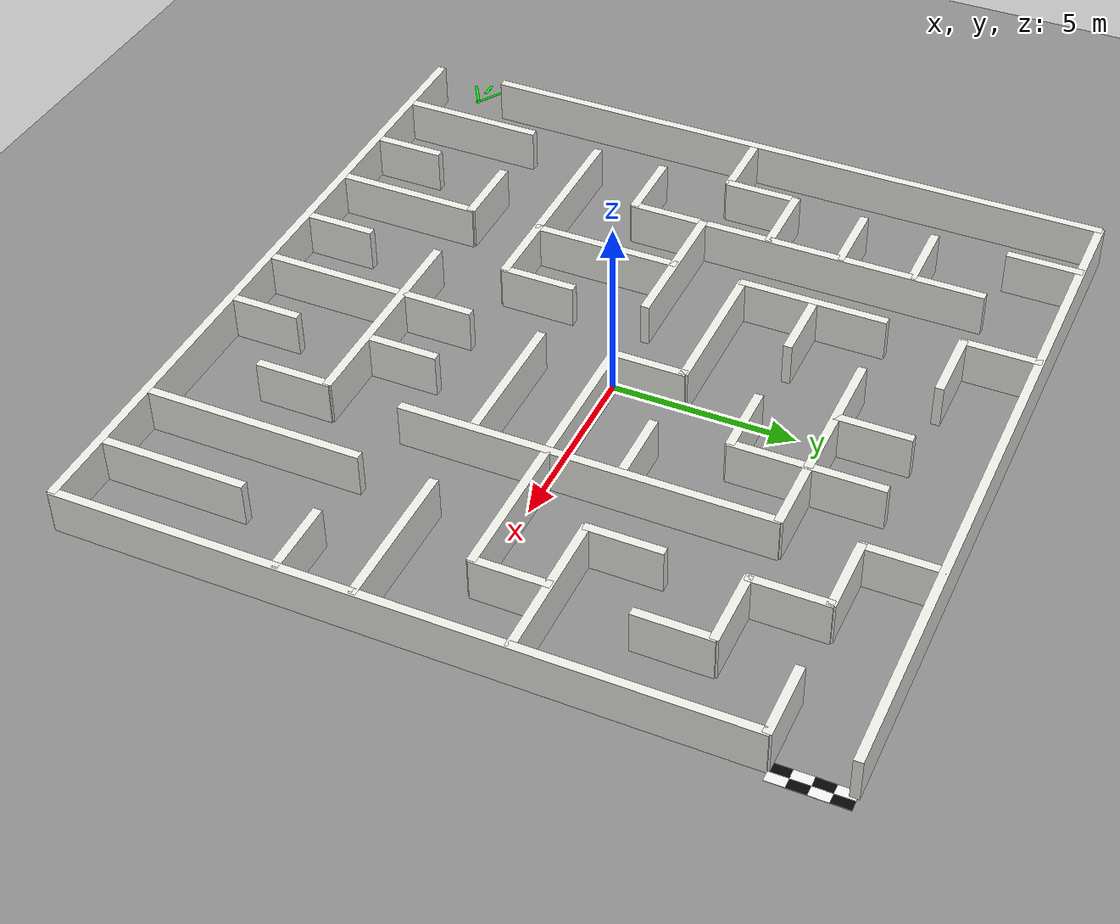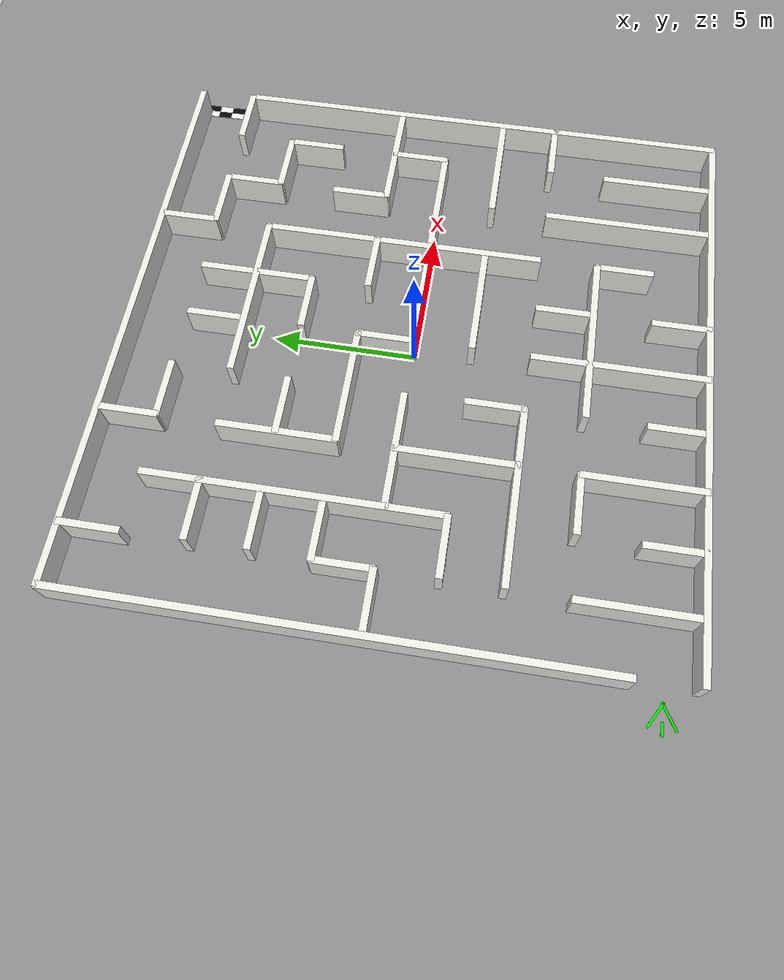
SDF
<sdf version="1.10">
 <world name="tugbot_maze_world_20260528_clean_scaled2x">
  <plugin name="gz::sim::systems::Physics" filename="gz-sim-physics-system"/>
  <plugin name="gz::sim::systems::UserCommands" filename="gz-sim-user-commands-system"/>
  <plugin name="gz::sim::systems::SceneBroadcaster" filename="gz-sim-scene-broadcaster-system"/>
  <plugin name="gz::sim::systems::Sensors" filename="gz-sim-sensors-system">
   <render_engine>ogre2</render_engine>
  </plugin>
  <plugin name="gz::sim::systems::Imu" filename="gz-sim-imu-system"/>
  <scene>
   <shadows>true</shadows>
   <ambient>0.55 0.55 0.55 1</ambient>
   <background>0.70 0.72 0.74 1</background>
  </scene>
  <physics name="1ms" type="ode">
   <max_step_size>0.001</max_step_size>
   <real_time_factor>1</real_time_factor>
   <real_time_update_rate>1000</real_time_update_rate>
  </physics>
  <gravity>0 0 -9.8</gravity>
  <atmosphere type="adiabatic"/>
  <model name="ground_plane">
   <static>true</static>
   <link name="link">
    <collision name="collision">
     <geometry><plane><normal>0 0 1</normal><size>1 1</size></plane></geometry>
    </collision>
    <visual name="visual">
     <geometry><plane><normal>0 0 1</normal><size>20 20</size></plane></geometry>
     <material><ambient>0.55 0.55 0.55 1</ambient><diffuse>0.55 0.55 0.55 1</diffuse></material>
    </visual>
   </link>
  </model>
  <model name="maze_exit_marker" phase33d_style="hidden_semantic_marker">
   <static>true</static>
   <pose>10.061 9.058 0.010 0.000 0.000 0.000</pose>
   <link name="link">
    <visual name="hidden_semantic_marker">
     <geometry><box><size>0.001 0.001 0.001</size></box></geometry>
     <material>
      <ambient>0.0 0.0 0.0 0.0</ambient>
      <diffuse>0.0 0.0 0.0 0.0</diffuse>
      <transparency>1.000</transparency>
     </material>
    </visual>
   </link>
  </model>
  <model name="maze_wall_outer_001_outer_001">
   <static>true</static>
   <pose>-0.034 9.994 0.600 0.000 0.000 0.000</pose>
   <link name="link">
    <collision name="collision"><geometry><box><size>20.056 0.240 1.200</size></box></geometry></collision>
    <visual name="visual">
     <geometry><box><size>20.056 0.240 1.200</size></box></geometry>
     <material>
      <ambient>0.92 0.92 0.90 1</ambient>
      <diffuse>0.92 0.92 0.90 1</diffuse>
      <specular>0.2 0.2 0.2 1</specular>
     </material>
    </visual>
   </link>
  </model>
  <model name="maze_wall_seg_002_h_001">
   <static>true</static>
   <pose>-3.008 7.988 0.600 0.000 0.000 0.000</pose>
   <link name="link">
    <collision name="collision"><geometry><box><size>2.072 0.240 1.200</size></box></geometry></collision>
    <visual name="visual">
     <geometry><box><size>2.072 0.240 1.200</size></box></geometry>
     <material>
      <ambient>0.92 0.92 0.90 1</ambient>
      <diffuse>0.92 0.92 0.90 1</diffuse>
      <specular>0.2 0.2 0.2 1</specular>
     </material>
    </visual>
   </link>
  </model>
  <model name="maze_wall_seg_003_h_002">
   <static>true</static>
   <pose>4.980 7.988 0.600 0.000 0.000 0.000</pose>
   <link name="link">
    <collision name="collision"><geometry><box><size>2.140 0.240 1.200</size></box></geometry></collision>
    <visual name="visual">
     <geometry><box><size>2.140 0.240 1.200</size></box></geometry>
     <material>
      <ambient>0.92 0.92 0.90 1</ambient>
      <diffuse>0.92 0.92 0.90 1</diffuse>
      <specular>0.2 0.2 0.2 1</specular>
     </material>
    </visual>
   </link>
  </model>
  <model name="maze_wall_seg_004_h_003">
   <static>true</static>
   <pose>9.026 7.988 0.600 0.000 0.000 0.000</pose>
   <link name="link">
    <collision name="collision"><geometry><box><size>2.072 0.240 1.200</size></box></geometry></collision>
    <visual name="visual">
     <geometry><box><size>2.072 0.240 1.200</size></box></geometry>
     <material>
      <ambient>0.92 0.92 0.90 1</ambient>
      <diffuse>0.92 0.92 0.90 1</diffuse>
      <specular>0.2 0.2 0.2 1</specular>
     </material>
    </visual>
   </link>
  </model>
  <model name="maze_wall_seg_005_h_004">
   <static>true</static>
   <pose>-6.952 5.984 0.600 0.000 0.000 0.000</pose>
   <link name="link">
    <collision name="collision"><geometry><box><size>2.072 0.240 1.200</size></box></geometry></collision>
    <visual name="visual">
     <geometry><box><size>2.072 0.240 1.200</size></box></geometry>
     <material>
      <ambient>0.92 0.92 0.90 1</ambient>
      <diffuse>0.92 0.92 0.90 1</diffuse>
      <specular>0.2 0.2 0.2 1</specular>
     </material>
    </visual>
   </link>
  </model>
  <model name="maze_wall_seg_006_h_005">
   <static>true</static>
   <pose>1.036 5.984 0.600 0.000 0.000 0.000</pose>
   <link name="link">
    <collision name="collision"><geometry><box><size>6.016 0.240 1.200</size></box></geometry></collision>
    <visual name="visual">
     <geometry><box><size>6.016 0.240 1.200</size></box></geometry>
     <material>
      <ambient>0.92 0.92 0.90 1</ambient>
      <diffuse>0.92 0.92 0.90 1</diffuse>
      <specular>0.2 0.2 0.2 1</specular>
     </material>
    </visual>
   </link>
  </model>
  <model name="maze_wall_seg_007_h_006">
   <static>true</static>
   <pose>6.986 5.984 0.600 0.000 0.000 0.000</pose>
   <link name="link">
    <collision name="collision"><geometry><box><size>2.140 0.240 1.200</size></box></geometry></collision>
    <visual name="visual">
     <geometry><box><size>2.140 0.240 1.200</size></box></geometry>
     <material>
      <ambient>0.92 0.92 0.90 1</ambient>
      <diffuse>0.92 0.92 0.90 1</diffuse>
      <specular>0.2 0.2 0.2 1</specular>
     </material>
    </visual>
   </link>
  </model>
  <model name="maze_wall_seg_008_h_007">
   <static>true</static>
   <pose>-6.952 3.978 0.600 0.000 0.000 0.000</pose>
   <link name="link">
    <collision name="collision"><geometry><box><size>2.072 0.240 1.200</size></box></geometry></collision>
    <visual name="visual">
     <geometry><box><size>2.072 0.240 1.200</size></box></geometry>
     <material>
      <ambient>0.92 0.92 0.90 1</ambient>
      <diffuse>0.92 0.92 0.90 1</diffuse>
      <specular>0.2 0.2 0.2 1</specular>
     </material>
    </visual>
   </link>
  </model>
  <model name="maze_wall_seg_009_h_008">
   <static>true</static>
   <pose>-3.008 3.978 0.600 0.000 0.000 0.000</pose>
   <link name="link">
    <collision name="collision"><geometry><box><size>2.072 0.240 1.200</size></box></geometry></collision>
    <visual name="visual">
     <geometry><box><size>2.072 0.240 1.200</size></box></geometry>
     <material>
      <ambient>0.92 0.92 0.90 1</ambient>
      <diffuse>0.92 0.92 0.90 1</diffuse>
      <specular>0.2 0.2 0.2 1</specular>
     </material>
    </visual>
   </link>
  </model>
  <model name="maze_wall_seg_010_h_009">
   <static>true</static>
   <pose>1.036 3.978 0.600 0.000 0.000 0.000</pose>
   <link name="link">
    <collision name="collision"><geometry><box><size>2.006 0.240 1.200</size></box></geometry></collision>
    <visual name="visual">
     <geometry><box><size>2.006 0.240 1.200</size></box></geometry>
     <material>
      <ambient>0.92 0.92 0.90 1</ambient>
      <diffuse>0.92 0.92 0.90 1</diffuse>
      <specular>0.2 0.2 0.2 1</specular>
     </material>
    </visual>
   </link>
  </model>
  <model name="maze_wall_seg_011_h_010">
   <static>true</static>
   <pose>-6.986 1.972 0.600 0.000 0.000 0.000</pose>
   <link name="link">
    <collision name="collision"><geometry><box><size>2.140 0.240 1.200</size></box></geometry></collision>
    <visual name="visual">
     <geometry><box><size>2.140 0.240 1.200</size></box></geometry>
     <material>
      <ambient>0.92 0.92 0.90 1</ambient>
      <diffuse>0.92 0.92 0.90 1</diffuse>
      <specular>0.2 0.2 0.2 1</specular>
     </material>
    </visual>
   </link>
  </model>
  <model name="maze_wall_seg_012_h_011">
   <static>true</static>
   <pose>-1.972 1.972 0.600 0.000 0.000 0.000</pose>
   <link name="link">
    <collision name="collision"><geometry><box><size>4.144 0.240 1.200</size></box></geometry></collision>
    <visual name="visual">
     <geometry><box><size>4.144 0.240 1.200</size></box></geometry>
     <material>
      <ambient>0.92 0.92 0.90 1</ambient>
      <diffuse>0.92 0.92 0.90 1</diffuse>
      <specular>0.2 0.2 0.2 1</specular>
     </material>
    </visual>
   </link>
  </model>
  <model name="maze_wall_seg_013_h_012">
   <static>true</static>
   <pose>3.008 1.972 0.600 0.000 0.000 0.000</pose>
   <link name="link">
    <collision name="collision"><geometry><box><size>2.072 0.240 1.200</size></box></geometry></collision>
    <visual name="visual">
     <geometry><box><size>2.072 0.240 1.200</size></box></geometry>
     <material>
      <ambient>0.92 0.92 0.90 1</ambient>
      <diffuse>0.92 0.92 0.90 1</diffuse>
      <specular>0.2 0.2 0.2 1</specular>
     </material>
    </visual>
   </link>
  </model>
  <model name="maze_wall_seg_014_h_013">
   <static>true</static>
   <pose>7.988 1.972 0.600 0.000 0.000 0.000</pose>
   <link name="link">
    <collision name="collision"><geometry><box><size>4.144 0.240 1.200</size></box></geometry></collision>
    <visual name="visual">
     <geometry><box><size>4.144 0.240 1.200</size></box></geometry>
     <material>
      <ambient>0.92 0.92 0.90 1</ambient>
      <diffuse>0.92 0.92 0.90 1</diffuse>
      <specular>0.2 0.2 0.2 1</specular>
     </material>
    </visual>
   </link>
  </model>
  <model name="maze_wall_seg_015_h_014">
   <static>true</static>
   <pose>-8.992 0.034 0.600 0.000 0.000 0.000</pose>
   <link name="link">
    <collision name="collision"><geometry><box><size>2.140 0.240 1.200</size></box></geometry></collision>
    <visual name="visual">
     <geometry><box><size>2.140 0.240 1.200</size></box></geometry>
     <material>
      <ambient>0.92 0.92 0.90 1</ambient>
      <diffuse>0.92 0.92 0.90 1</diffuse>
      <specular>0.2 0.2 0.2 1</specular>
     </material>
    </visual>
   </link>
  </model>
  <model name="maze_wall_seg_016_h_015">
   <static>true</static>
   <pose>-4.012 0.034 0.600 0.000 0.000 0.000</pose>
   <link name="link">
    <collision name="collision"><geometry><box><size>4.078 0.240 1.200</size></box></geometry></collision>
    <visual name="visual">
     <geometry><box><size>4.078 0.240 1.200</size></box></geometry>
     <material>
      <ambient>0.92 0.92 0.90 1</ambient>
      <diffuse>0.92 0.92 0.90 1</diffuse>
      <specular>0.2 0.2 0.2 1</specular>
     </material>
    </visual>
   </link>
  </model>
  <model name="maze_wall_seg_017_h_016">
   <static>true</static>
   <pose>4.012 0.034 0.600 0.000 0.000 0.000</pose>
   <link name="link">
    <collision name="collision"><geometry><box><size>8.090 0.240 1.200</size></box></geometry></collision>
    <visual name="visual">
     <geometry><box><size>8.090 0.240 1.200</size></box></geometry>
     <material>
      <ambient>0.92 0.92 0.90 1</ambient>
      <diffuse>0.92 0.92 0.90 1</diffuse>
      <specular>0.2 0.2 0.2 1</specular>
     </material>
    </visual>
   </link>
  </model>
  <model name="maze_wall_seg_018_h_017">
   <static>true</static>
   <pose>-6.952 -1.972 0.600 0.000 0.000 0.000</pose>
   <link name="link">
    <collision name="collision"><geometry><box><size>2.072 0.240 1.200</size></box></geometry></collision>
    <visual name="visual">
     <geometry><box><size>2.072 0.240 1.200</size></box></geometry>
     <material>
      <ambient>0.92 0.92 0.90 1</ambient>
      <diffuse>0.92 0.92 0.90 1</diffuse>
      <specular>0.2 0.2 0.2 1</specular>
     </material>
    </visual>
   </link>
  </model>
  <model name="maze_wall_seg_019_h_018">
   <static>true</static>
   <pose>2.038 -1.972 0.600 0.000 0.000 0.000</pose>
   <link name="link">
    <collision name="collision"><geometry><box><size>4.012 0.240 1.200</size></box></geometry></collision>
    <visual name="visual">
     <geometry><box><size>4.012 0.240 1.200</size></box></geometry>
     <material>
      <ambient>0.92 0.92 0.90 1</ambient>
      <diffuse>0.92 0.92 0.90 1</diffuse>
      <specular>0.2 0.2 0.2 1</specular>
     </material>
    </visual>
   </link>
  </model>
  <model name="maze_wall_seg_020_h_019">
   <static>true</static>
   <pose>8.022 -1.972 0.600 0.000 0.000 0.000</pose>
   <link name="link">
    <collision name="collision"><geometry><box><size>4.078 0.240 1.200</size></box></geometry></collision>
    <visual name="visual">
     <geometry><box><size>4.078 0.240 1.200</size></box></geometry>
     <material>
      <ambient>0.92 0.92 0.90 1</ambient>
      <diffuse>0.92 0.92 0.90 1</diffuse>
      <specular>0.2 0.2 0.2 1</specular>
     </material>
    </visual>
   </link>
  </model>
  <model name="maze_wall_seg_021_h_020">
   <static>true</static>
   <pose>-4.948 -3.978 0.600 0.000 0.000 0.000</pose>
   <link name="link">
    <collision name="collision"><geometry><box><size>6.084 0.240 1.200</size></box></geometry></collision>
    <visual name="visual">
     <geometry><box><size>6.084 0.240 1.200</size></box></geometry>
     <material>
      <ambient>0.92 0.92 0.90 1</ambient>
      <diffuse>0.92 0.92 0.90 1</diffuse>
      <specular>0.2 0.2 0.2 1</specular>
     </material>
    </visual>
   </link>
  </model>
  <model name="maze_wall_seg_022_h_021">
   <static>true</static>
   <pose>9.026 -3.978 0.600 0.000 0.000 0.000</pose>
   <link name="link">
    <collision name="collision"><geometry><box><size>2.072 0.240 1.200</size></box></geometry></collision>
    <visual name="visual">
     <geometry><box><size>2.072 0.240 1.200</size></box></geometry>
     <material>
      <ambient>0.92 0.92 0.90 1</ambient>
      <diffuse>0.92 0.92 0.90 1</diffuse>
      <specular>0.2 0.2 0.2 1</specular>
     </material>
    </visual>
   </link>
  </model>
  <model name="maze_wall_seg_023_h_022">
   <static>true</static>
   <pose>-4.948 -5.984 0.600 0.000 0.000 0.000</pose>
   <link name="link">
    <collision name="collision"><geometry><box><size>2.072 0.240 1.200</size></box></geometry></collision>
    <visual name="visual">
     <geometry><box><size>2.072 0.240 1.200</size></box></geometry>
     <material>
      <ambient>0.92 0.92 0.90 1</ambient>
      <diffuse>0.92 0.92 0.90 1</diffuse>
      <specular>0.2 0.2 0.2 1</specular>
     </material>
    </visual>
   </link>
  </model>
  <model name="maze_wall_seg_024_h_023">
   <static>true</static>
   <pose>1.036 -5.984 0.600 0.000 0.000 0.000</pose>
   <link name="link">
    <collision name="collision"><geometry><box><size>6.016 0.240 1.200</size></box></geometry></collision>
    <visual name="visual">
     <geometry><box><size>6.016 0.240 1.200</size></box></geometry>
     <material>
      <ambient>0.92 0.92 0.90 1</ambient>
      <diffuse>0.92 0.92 0.90 1</diffuse>
      <specular>0.2 0.2 0.2 1</specular>
     </material>
    </visual>
   </link>
  </model>
  <model name="maze_wall_outer_025_outer_002">
   <static>true</static>
   <pose>0.034 -9.994 0.600 0.000 0.000 0.000</pose>
   <link name="link">
    <collision name="collision"><geometry><box><size>20.056 0.240 1.200</size></box></geometry></collision>
    <visual name="visual">
     <geometry><box><size>20.056 0.240 1.200</size></box></geometry>
     <material>
      <ambient>0.92 0.92 0.90 1</ambient>
      <diffuse>0.92 0.92 0.90 1</diffuse>
      <specular>0.2 0.2 0.2 1</specular>
     </material>
    </visual>
   </link>
  </model>
  <model name="maze_wall_outer_026_outer_003">
   <static>true</static>
   <pose>-9.994 1.036 0.600 0.000 0.000 0.000</pose>
   <link name="link">
    <collision name="collision"><geometry><box><size>0.240 18.050 1.200</size></box></geometry></collision>
    <visual name="visual">
     <geometry><box><size>0.240 18.050 1.200</size></box></geometry>
     <material>
      <ambient>0.92 0.92 0.90 1</ambient>
      <diffuse>0.92 0.92 0.90 1</diffuse>
      <specular>0.2 0.2 0.2 1</specular>
     </material>
    </visual>
   </link>
  </model>
  <model name="maze_wall_seg_027_v_001">
   <static>true</static>
   <pose>-7.988 9.026 0.600 0.000 0.000 0.000</pose>
   <link name="link">
    <collision name="collision"><geometry><box><size>0.240 2.072 1.200</size></box></geometry></collision>
    <visual name="visual">
     <geometry><box><size>0.240 2.072 1.200</size></box></geometry>
     <material>
      <ambient>0.92 0.92 0.90 1</ambient>
      <diffuse>0.92 0.92 0.90 1</diffuse>
      <specular>0.2 0.2 0.2 1</specular>
     </material>
    </visual>
   </link>
  </model>
  <model name="maze_wall_seg_028_v_002">
   <static>true</static>
   <pose>-7.988 1.002 0.600 0.000 0.000 0.000</pose>
   <link name="link">
    <collision name="collision"><geometry><box><size>0.240 2.072 1.200</size></box></geometry></collision>
    <visual name="visual">
     <geometry><box><size>0.240 2.072 1.200</size></box></geometry>
     <material>
      <ambient>0.92 0.92 0.90 1</ambient>
      <diffuse>0.92 0.92 0.90 1</diffuse>
      <specular>0.2 0.2 0.2 1</specular>
     </material>
    </visual>
   </link>
  </model>
  <model name="maze_wall_seg_029_v_003">
   <static>true</static>
   <pose>-7.988 -8.022 0.600 0.000 0.000 0.000</pose>
   <link name="link">
    <collision name="collision"><geometry><box><size>0.240 4.078 1.200</size></box></geometry></collision>
    <visual name="visual">
     <geometry><box><size>0.240 4.078 1.200</size></box></geometry>
     <material>
      <ambient>0.92 0.92 0.90 1</ambient>
      <diffuse>0.92 0.92 0.90 1</diffuse>
      <specular>0.2 0.2 0.2 1</specular>
     </material>
    </visual>
   </link>
  </model>
  <model name="maze_wall_seg_030_v_004">
   <static>true</static>
   <pose>-5.984 2.974 0.600 0.000 0.000 0.000</pose>
   <link name="link">
    <collision name="collision"><geometry><box><size>0.240 10.028 1.200</size></box></geometry></collision>
    <visual name="visual">
     <geometry><box><size>0.240 10.028 1.200</size></box></geometry>
     <material>
      <ambient>0.92 0.92 0.90 1</ambient>
      <diffuse>0.92 0.92 0.90 1</diffuse>
      <specular>0.2 0.2 0.2 1</specular>
     </material>
    </visual>
   </link>
  </model>
  <model name="maze_wall_seg_031_v_005">
   <static>true</static>
   <pose>-5.984 -9.026 0.600 0.000 0.000 0.000</pose>
   <link name="link">
    <collision name="collision"><geometry><box><size>0.240 2.072 1.200</size></box></geometry></collision>
    <visual name="visual">
     <geometry><box><size>0.240 2.072 1.200</size></box></geometry>
     <material>
      <ambient>0.92 0.92 0.90 1</ambient>
      <diffuse>0.92 0.92 0.90 1</diffuse>
      <specular>0.2 0.2 0.2 1</specular>
     </material>
    </visual>
   </link>
  </model>
  <model name="maze_wall_seg_032_v_006">
   <static>true</static>
   <pose>-3.978 8.992 0.600 0.000 0.000 0.000</pose>
   <link name="link">
    <collision name="collision"><geometry><box><size>0.240 2.140 1.200</size></box></geometry></collision>
    <visual name="visual">
     <geometry><box><size>0.240 2.140 1.200</size></box></geometry>
     <material>
      <ambient>0.92 0.92 0.90 1</ambient>
      <diffuse>0.92 0.92 0.90 1</diffuse>
      <specular>0.2 0.2 0.2 1</specular>
     </material>
    </visual>
   </link>
  </model>
  <model name="maze_wall_seg_033_v_007">
   <static>true</static>
   <pose>-3.978 3.944 0.600 0.000 0.000 0.000</pose>
   <link name="link">
    <collision name="collision"><geometry><box><size>0.240 4.078 1.200</size></box></geometry></collision>
    <visual name="visual">
     <geometry><box><size>0.240 4.078 1.200</size></box></geometry>
     <material>
      <ambient>0.92 0.92 0.90 1</ambient>
      <diffuse>0.92 0.92 0.90 1</diffuse>
      <specular>0.2 0.2 0.2 1</specular>
     </material>
    </visual>
   </link>
  </model>
  <model name="maze_wall_seg_034_v_008">
   <static>true</static>
   <pose>-3.978 -1.972 0.600 0.000 0.000 0.000</pose>
   <link name="link">
    <collision name="collision"><geometry><box><size>0.240 4.144 1.200</size></box></geometry></collision>
    <visual name="visual">
     <geometry><box><size>0.240 4.144 1.200</size></box></geometry>
     <material>
      <ambient>0.92 0.92 0.90 1</ambient>
      <diffuse>0.92 0.92 0.90 1</diffuse>
      <specular>0.2 0.2 0.2 1</specular>
     </material>
    </visual>
   </link>
  </model>
  <model name="maze_wall_seg_035_v_009">
   <static>true</static>
   <pose>-3.978 -7.988 0.600 0.000 0.000 0.000</pose>
   <link name="link">
    <collision name="collision"><geometry><box><size>0.240 4.144 1.200</size></box></geometry></collision>
    <visual name="visual">
     <geometry><box><size>0.240 4.144 1.200</size></box></geometry>
     <material>
      <ambient>0.92 0.92 0.90 1</ambient>
      <diffuse>0.92 0.92 0.90 1</diffuse>
      <specular>0.2 0.2 0.2 1</specular>
     </material>
    </visual>
   </link>
  </model>
  <model name="maze_wall_seg_036_v_010">
   <static>true</static>
   <pose>-1.972 -3.008 0.600 0.000 0.000 0.000</pose>
   <link name="link">
    <collision name="collision"><geometry><box><size>0.240 2.072 1.200</size></box></geometry></collision>
    <visual name="visual">
     <geometry><box><size>0.240 2.072 1.200</size></box></geometry>
     <material>
      <ambient>0.92 0.92 0.90 1</ambient>
      <diffuse>0.92 0.92 0.90 1</diffuse>
      <specular>0.2 0.2 0.2 1</specular>
     </material>
    </visual>
   </link>
  </model>
  <model name="maze_wall_seg_037_v_011">
   <static>true</static>
   <pose>-1.972 -9.026 0.600 0.000 0.000 0.000</pose>
   <link name="link">
    <collision name="collision"><geometry><box><size>0.240 2.072 1.200</size></box></geometry></collision>
    <visual name="visual">
     <geometry><box><size>0.240 2.072 1.200</size></box></geometry>
     <material>
      <ambient>0.92 0.92 0.90 1</ambient>
      <diffuse>0.92 0.92 0.90 1</diffuse>
      <specular>0.2 0.2 0.2 1</specular>
     </material>
    </visual>
   </link>
  </model>
  <model name="maze_wall_seg_038_v_012">
   <static>true</static>
   <pose>0.034 6.952 0.600 0.000 0.000 0.000</pose>
   <link name="link">
    <collision name="collision"><geometry><box><size>0.240 2.072 1.200</size></box></geometry></collision>
    <visual name="visual">
     <geometry><box><size>0.240 2.072 1.200</size></box></geometry>
     <material>
      <ambient>0.92 0.92 0.90 1</ambient>
      <diffuse>0.92 0.92 0.90 1</diffuse>
      <specular>0.2 0.2 0.2 1</specular>
     </material>
    </visual>
   </link>
  </model>
  <model name="maze_wall_seg_039_v_013">
   <static>true</static>
   <pose>0.034 1.002 0.600 0.000 0.000 0.000</pose>
   <link name="link">
    <collision name="collision"><geometry><box><size>0.240 2.072 1.200</size></box></geometry></collision>
    <visual name="visual">
     <geometry><box><size>0.240 2.072 1.200</size></box></geometry>
     <material>
      <ambient>0.92 0.92 0.90 1</ambient>
      <diffuse>0.92 0.92 0.90 1</diffuse>
      <specular>0.2 0.2 0.2 1</specular>
     </material>
    </visual>
   </link>
  </model>
  <model name="maze_wall_seg_040_v_014">
   <static>true</static>
   <pose>0.034 -7.020 0.600 0.000 0.000 0.000</pose>
   <link name="link">
    <collision name="collision"><geometry><box><size>0.240 6.084 1.200</size></box></geometry></collision>
    <visual name="visual">
     <geometry><box><size>0.240 6.084 1.200</size></box></geometry>
     <material>
      <ambient>0.92 0.92 0.90 1</ambient>
      <diffuse>0.92 0.92 0.90 1</diffuse>
      <specular>0.2 0.2 0.2 1</specular>
     </material>
    </visual>
   </link>
  </model>
  <model name="maze_wall_seg_041_v_015">
   <static>true</static>
   <pose>1.972 5.950 0.600 0.000 0.000 0.000</pose>
   <link name="link">
    <collision name="collision"><geometry><box><size>0.240 4.078 1.200</size></box></geometry></collision>
    <visual name="visual">
     <geometry><box><size>0.240 4.078 1.200</size></box></geometry>
     <material>
      <ambient>0.92 0.92 0.90 1</ambient>
      <diffuse>0.92 0.92 0.90 1</diffuse>
      <specular>0.2 0.2 0.2 1</specular>
     </material>
    </visual>
   </link>
  </model>
  <model name="maze_wall_seg_042_v_016">
   <static>true</static>
   <pose>1.972 -5.014 0.600 0.000 0.000 0.000</pose>
   <link name="link">
    <collision name="collision"><geometry><box><size>0.240 2.072 1.200</size></box></geometry></collision>
    <visual name="visual">
     <geometry><box><size>0.240 2.072 1.200</size></box></geometry>
     <material>
      <ambient>0.92 0.92 0.90 1</ambient>
      <diffuse>0.92 0.92 0.90 1</diffuse>
      <specular>0.2 0.2 0.2 1</specular>
     </material>
    </visual>
   </link>
  </model>
  <model name="maze_wall_seg_043_v_017">
   <static>true</static>
   <pose>1.972 -9.026 0.600 0.000 0.000 0.000</pose>
   <link name="link">
    <collision name="collision"><geometry><box><size>0.240 2.072 1.200</size></box></geometry></collision>
    <visual name="visual">
     <geometry><box><size>0.240 2.072 1.200</size></box></geometry>
     <material>
      <ambient>0.92 0.92 0.90 1</ambient>
      <diffuse>0.92 0.92 0.90 1</diffuse>
      <specular>0.2 0.2 0.2 1</specular>
     </material>
    </visual>
   </link>
  </model>
  <model name="maze_wall_seg_044_v_018">
   <static>true</static>
   <pose>3.978 8.992 0.600 0.000 0.000 0.000</pose>
   <link name="link">
    <collision name="collision"><geometry><box><size>0.240 2.140 1.200</size></box></geometry></collision>
    <visual name="visual">
     <geometry><box><size>0.240 2.140 1.200</size></box></geometry>
     <material>
      <ambient>0.92 0.92 0.90 1</ambient>
      <diffuse>0.92 0.92 0.90 1</diffuse>
      <specular>0.2 0.2 0.2 1</specular>
     </material>
    </visual>
   </link>
  </model>
  <model name="maze_wall_seg_045_v_019">
   <static>true</static>
   <pose>3.978 1.036 0.600 0.000 0.000 0.000</pose>
   <link name="link">
    <collision name="collision"><geometry><box><size>0.240 10.028 1.200</size></box></geometry></collision>
    <visual name="visual">
     <geometry><box><size>0.240 10.028 1.200</size></box></geometry>
     <material>
      <ambient>0.92 0.92 0.90 1</ambient>
      <diffuse>0.92 0.92 0.90 1</diffuse>
      <specular>0.2 0.2 0.2 1</specular>
     </material>
    </visual>
   </link>
  </model>
  <model name="maze_wall_seg_046_v_020">
   <static>true</static>
   <pose>3.978 -6.952 0.600 0.000 0.000 0.000</pose>
   <link name="link">
    <collision name="collision"><geometry><box><size>0.240 2.072 1.200</size></box></geometry></collision>
    <visual name="visual">
     <geometry><box><size>0.240 2.072 1.200</size></box></geometry>
     <material>
      <ambient>0.92 0.92 0.90 1</ambient>
      <diffuse>0.92 0.92 0.90 1</diffuse>
      <specular>0.2 0.2 0.2 1</specular>
     </material>
    </visual>
   </link>
  </model>
  <model name="maze_wall_seg_047_v_021">
   <static>true</static>
   <pose>5.984 6.986 0.600 0.000 0.000 0.000</pose>
   <link name="link">
    <collision name="collision"><geometry><box><size>0.240 2.140 1.200</size></box></geometry></collision>
    <visual name="visual">
     <geometry><box><size>0.240 2.140 1.200</size></box></geometry>
     <material>
      <ambient>0.92 0.92 0.90 1</ambient>
      <diffuse>0.92 0.92 0.90 1</diffuse>
      <specular>0.2 0.2 0.2 1</specular>
     </material>
    </visual>
   </link>
  </model>
  <model name="maze_wall_seg_048_v_022">
   <static>true</static>
   <pose>5.984 2.942 0.600 0.000 0.000 0.000</pose>
   <link name="link">
    <collision name="collision"><geometry><box><size>0.240 2.072 1.200</size></box></geometry></collision>
    <visual name="visual">
     <geometry><box><size>0.240 2.072 1.200</size></box></geometry>
     <material>
      <ambient>0.92 0.92 0.90 1</ambient>
      <diffuse>0.92 0.92 0.90 1</diffuse>
      <specular>0.2 0.2 0.2 1</specular>
     </material>
    </visual>
   </link>
  </model>
  <model name="maze_wall_seg_049_v_023">
   <static>true</static>
   <pose>5.984 -7.020 0.600 0.000 0.000 0.000</pose>
   <link name="link">
    <collision name="collision"><geometry><box><size>0.240 6.084 1.200</size></box></geometry></collision>
    <visual name="visual">
     <geometry><box><size>0.240 6.084 1.200</size></box></geometry>
     <material>
      <ambient>0.92 0.92 0.90 1</ambient>
      <diffuse>0.92 0.92 0.90 1</diffuse>
      <specular>0.2 0.2 0.2 1</specular>
     </material>
    </visual>
   </link>
  </model>
  <model name="maze_wall_seg_050_v_024">
   <static>true</static>
   <pose>7.988 5.014 0.600 0.000 0.000 0.000</pose>
   <link name="link">
    <collision name="collision"><geometry><box><size>0.240 2.072 1.200</size></box></geometry></collision>
    <visual name="visual">
     <geometry><box><size>0.240 2.072 1.200</size></box></geometry>
     <material>
      <ambient>0.92 0.92 0.90 1</ambient>
      <diffuse>0.92 0.92 0.90 1</diffuse>
      <specular>0.2 0.2 0.2 1</specular>
     </material>
    </visual>
   </link>
  </model>
  <model name="maze_wall_seg_051_v_025">
   <static>true</static>
   <pose>7.988 1.002 0.600 0.000 0.000 0.000</pose>
   <link name="link">
    <collision name="collision"><geometry><box><size>0.240 2.072 1.200</size></box></geometry></collision>
    <visual name="visual">
     <geometry><box><size>0.240 2.072 1.200</size></box></geometry>
     <material>
      <ambient>0.92 0.92 0.90 1</ambient>
      <diffuse>0.92 0.92 0.90 1</diffuse>
      <specular>0.2 0.2 0.2 1</specular>
     </material>
    </visual>
   </link>
  </model>
  <model name="maze_wall_seg_052_v_026">
   <static>true</static>
   <pose>7.988 -8.022 0.600 0.000 0.000 0.000</pose>
   <link name="link">
    <collision name="collision"><geometry><box><size>0.240 4.078 1.200</size></box></geometry></collision>
    <visual name="visual">
     <geometry><box><size>0.240 4.078 1.200</size></box></geometry>
     <material>
      <ambient>0.92 0.92 0.90 1</ambient>
      <diffuse>0.92 0.92 0.90 1</diffuse>
      <specular>0.2 0.2 0.2 1</specular>
     </material>
    </visual>
   </link>
  </model>
  <model name="maze_wall_outer_053_outer_004">
   <static>true</static>
   <pose>9.994 -1.002 0.600 0.000 0.000 0.000</pose>
   <link name="link">
    <collision name="collision"><geometry><box><size>0.240 18.116 1.200</size></box></geometry></collision>
    <visual name="visual">
     <geometry><box><size>0.240 18.116 1.200</size></box></geometry>
     <material>
      <ambient>0.92 0.92 0.90 1</ambient>
      <diffuse>0.92 0.92 0.90 1</diffuse>
      <specular>0.2 0.2 0.2 1</specular>
     </material>
    </visual>
   </link>
  </model>
  <light name="sun" type="directional">
   <cast_shadows>false</cast_shadows>
   <pose>0 0 10 0 0 0</pose>
   <diffuse>0.8 0.8 0.8 1</diffuse>
   <specular>0.2 0.2 0.2 1</specular>
   <attenuation>
    <range>1000</range>
    <constant>0.9</constant>
    <linear>0.01</linear>
    <quadratic>0.001</quadratic>
   </attenuation>
   <direction>-0.5 0.1 -0.9</direction>
  </light>
  <model name="maze_entrance_arrow_visual" phase33d_style="triangle_arrow">
   <static>true</static>
   <pose>-10.661 -9.025 0.005 0.000 0.000 3.142</pose>
   <link name="link">
    <visual name="triangle_arrow_tip">
     <pose>0.420 0.000 0.002 0.000 0.000 0.000</pose>
     <geometry><box><size>0.420 0.090 0.010</size></box></geometry>
     <material><ambient>0.0 0.9 0.0 1.0</ambient><diffuse>0.0 0.9 0.0 1.0</diffuse></material>
    </visual>
    <visual name="triangle_arrow_left_edge">
     <pose>0.050 0.200 0.002 0.000 0.000 0.550</pose>
     <geometry><box><size>0.920 0.080 0.010</size></box></geometry>
     <material><ambient>0.0 0.9 0.0 1.0</ambient><diffuse>0.0 0.9 0.0 1.0</diffuse></material>
    </visual>
    <visual name="triangle_arrow_right_edge">
     <pose>0.050 -0.200 0.002 0.000 0.000 -0.550</pose>
     <geometry><box><size>0.920 0.080 0.010</size></box></geometry>
     <material><ambient>0.0 0.9 0.0 1.0</ambient><diffuse>0.0 0.9 0.0 1.0</diffuse></material>
    </visual>
   </link>
  </model>
  <model name="maze_exit_finish_band_visual" phase33d_style="rotated_checker_finish_band">
   <static>true</static>
   <pose>10.061 9.058 0.005 0.000 0.000 -3.141</pose>
   <link name="link">
    <visual name="tile_0_0">
     <pose>-0.135 -0.750 0.002 0.000 0.000 0.000</pose>
     <geometry><box><size>0.270 0.500 0.010</size></box></geometry>
     <material><ambient>0.02 0.02 0.02 1.0</ambient><diffuse>0.02 0.02 0.02 1.0</diffuse></material>
    </visual>
    <visual name="tile_0_1">
     <pose>0.135 -0.750 0.002 0.000 0.000 0.000</pose>
     <geometry><box><size>0.270 0.500 0.010</size></box></geometry>
     <material><ambient>0.95 0.95 0.95 1.0</ambient><diffuse>0.95 0.95 0.95 1.0</diffuse></material>
    </visual>
    <visual name="tile_1_0">
     <pose>-0.135 -0.250 0.002 0.000 0.000 0.000</pose>
     <geometry><box><size>0.270 0.500 0.010</size></box></geometry>
     <material><ambient>0.95 0.95 0.95 1.0</ambient><diffuse>0.95 0.95 0.95 1.0</diffuse></material>
    </visual>
    <visual name="tile_1_1">
     <pose>0.135 -0.250 0.002 0.000 0.000 0.000</pose>
     <geometry><box><size>0.270 0.500 0.010</size></box></geometry>
     <material><ambient>0.02 0.02 0.02 1.0</ambient><diffuse>0.02 0.02 0.02 1.0</diffuse></material>
    </visual>
    <visual name="tile_2_0">
     <pose>-0.135 0.250 0.002 0.000 0.000 0.000</pose>
     <geometry><box><size>0.270 0.500 0.010</size></box></geometry>
     <material><ambient>0.02 0.02 0.02 1.0</ambient><diffuse>0.02 0.02 0.02 1.0</diffuse></material>
    </visual>
    <visual name="tile_2_1">
     <pose>0.135 0.250 0.002 0.000 0.000 0.000</pose>
     <geometry><box><size>0.270 0.500 0.010</size></box></geometry>
     <material><ambient>0.95 0.95 0.95 1.0</ambient><diffuse>0.95 0.95 0.95 1.0</diffuse></material>
    </visual>
    <visual name="tile_3_0">
     <pose>-0.135 0.750 0.002 0.000 0.000 0.000</pose>
     <geometry><box><size>0.270 0.500 0.010</size></box></geometry>
     <material><ambient>0.95 0.95 0.95 1.0</ambient><diffuse>0.95 0.95 0.95 1.0</diffuse></material>
    </visual>
    <visual name="tile_3_1">
     <pose>0.135 0.750 0.002 0.000 0.000 0.000</pose>
     <geometry><box><size>0.270 0.500 0.010</size></box></geometry>
     <material><ambient>0.02 0.02 0.02 1.0</ambient><diffuse>0.02 0.02 0.02 1.0</diffuse></material>
    </visual>
   </link>
  </model>
 </world>
</sdf>
